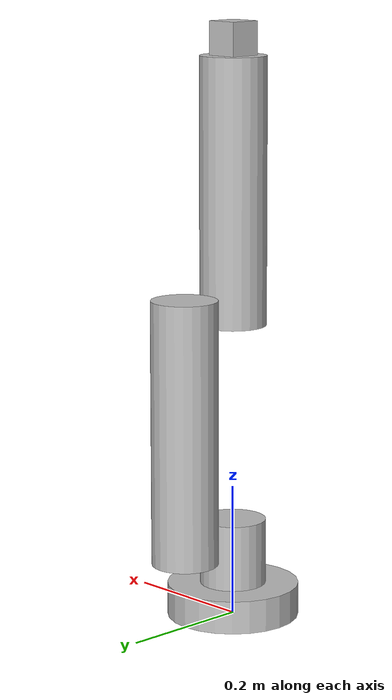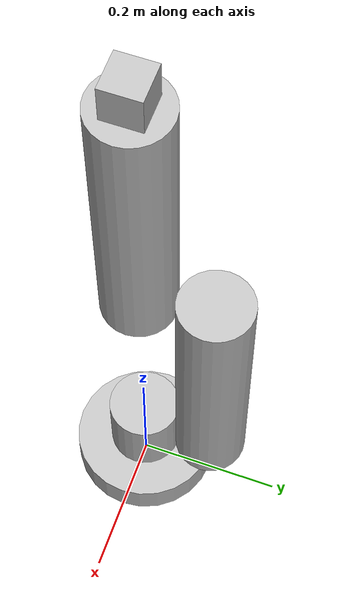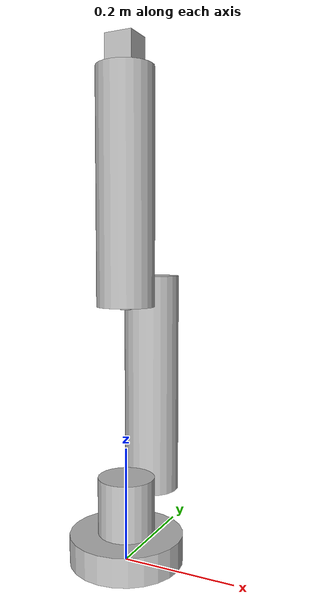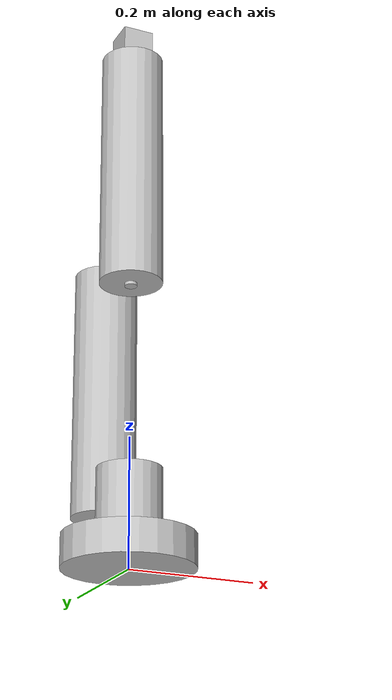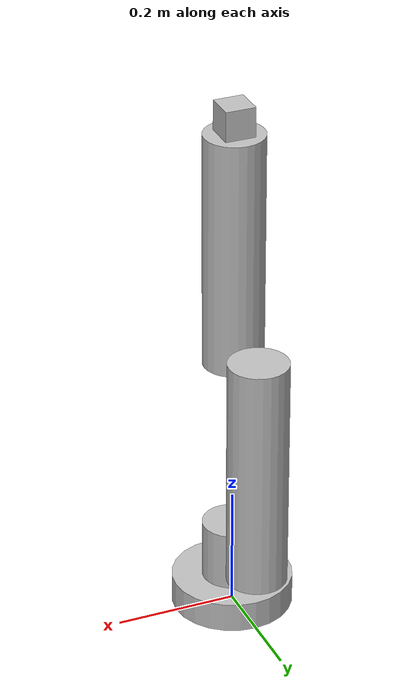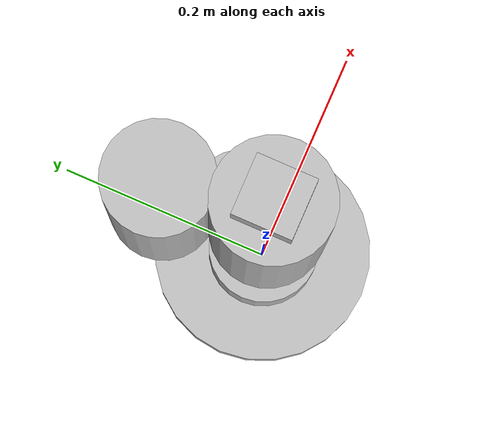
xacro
<?xml version="1.0"?>
<robot xmlns:xacro="http://www.ros.org/wiki/xacro" name="rob_manip">
    <xacro:arg name="initial_positions_file" default="initial_positions.yaml" />

    <!-- Import rob_manip urdf file -->
    <xacro:include filename="/home/lana/ros2_workspace_Kocis/src/rob_manip_description/urdf/rob_manip.urdf" />

    <!-- Import control_xacro -->
    <xacro:include filename="rob_manip.ros2_control.xacro" />

    <xacro:rob_manip_ros2_control name="GazeboSimSystem" initial_positions_file="$(arg initial_positions_file)"/>

</robot>

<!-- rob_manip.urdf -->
<robot name="rob_manip">

<!-- ==================== BASE LINK ==================== -->
<link name="base_link">
    <visual>
        <geometry>
            <cylinder length="0.05" radius="0.1"/>
        </geometry>
        <material name="silver">
            <color rgba="0.75 0.75 0.75 1"/>
        </material>
        <origin rpy="0.0 0 0" xyz="0 0 0.025"/>
    </visual>
    <collision>
        <geometry>
            <cylinder length="0.05" radius="0.1"/>
        </geometry>
        <origin rpy="0.0 0 0" xyz="0 0 0.025"/>
    </collision>
    <inertial>
        <mass value="1.0"/>
        <inertia ixx="0.0027" iyy="0.0027" izz="0.005" ixy="0" ixz="0" iyz="0"/>
        <origin rpy="0.0 0 0" xyz="0 0 0.025"/>
    </inertial>
</link>

<!-- Fiksna veza s okolinom -->
<link name="world"/>
<joint name="fixed" type="fixed">
    <parent link="world"/>
    <child link="base_link"/>
</joint>

<!-- ==================== TORSO ==================== -->
<link name="torso">
    <visual>
        <geometry>
            <cylinder length="0.1" radius="0.05"/>
        </geometry>
        <material name="silver">
            <color rgba="0.75 0.75 0.75 1"/>
        </material>
        <origin rpy="0.0 0 0" xyz="0 0 0.05"/>
    </visual>
    <collision>
        <geometry>
            <cylinder length="0.1" radius="0.05"/>
        </geometry>
        <origin rpy="0.0 0 0" xyz="0 0 0.05"/>
    </collision>
    <inertial>
        <mass value="1.0"/>
        <inertia ixx="0.00145" iyy="0.00145" izz="0.00125" ixy="0" ixz="0" iyz="0"/>
        <origin rpy="0.0 0 0" xyz="0 0 0.05"/>
    </inertial>
</link>

<!-- Hip joint: rotacija oko Z osi (yaw) -->
<joint name="hip" type="revolute">
    <axis xyz="0 0 1"/>
    <parent link="base_link"/>
    <child link="torso"/>
    <origin rpy="0 0 0" xyz="0.0 0.0 0.05"/>
    <limit lower="-3.14" upper="3.14" effort="100.0" velocity="3.14"/>
</joint>

<!-- ==================== UPPER ARM ==================== -->
<link name="upper_arm">
    <visual>
        <geometry>
            <cylinder length="0.4" radius="0.05"/>
        </geometry>
        <material name="silver">
            <color rgba="0.75 0.75 0.75 1"/>
        </material>
        <origin rpy="0.0 0 0" xyz="0 0 0.2"/>
    </visual>
    <collision>
        <geometry>
            <cylinder length="0.4" radius="0.05"/>
        </geometry>
        <origin rpy="0.0 0 0" xyz="0 0 0.2"/>
    </collision>
    <inertial>
        <mass value="1.0"/>
        <inertia ixx="0.01396" iyy="0.01396" izz="0.00125" ixy="0" ixz="0" iyz="0"/>
        <origin rpy="0.0 0 0" xyz="0 0 0.2"/>
    </inertial>
</link>

<!-- Shoulder joint: rotacija oko Y osi (pitch) -->
<joint name="shoulder" type="revolute">
    <axis xyz="0 1 0"/>
    <parent link="torso"/>
    <child link="upper_arm"/>
    <origin rpy="0 0 0" xyz="0 0.1 0.05"/>
    <limit lower="-3.14" upper="3.14" effort="100.0" velocity="3.14"/>
</joint>

<!-- ==================== FOREARM ROLL LINK (međulink za lakat) ==================== -->
<link name="forearm_roll_link">
    <visual>
        <origin xyz="0 0 0" rpy="0 0 0"/>
        <geometry>
            <cylinder length="0.01" radius="0.01"/>
        </geometry>
        <material name="silver">
            <color rgba="0.75 0.75 0.75 1"/>
        </material>
    </visual>
    <collision>
        <origin xyz="0 0 0" rpy="0 0 0"/>
        <geometry>
            <cylinder length="0.01" radius="0.01"/>
        </geometry>
    </collision>
    <inertial>
        <mass value="0.05"/>
        <inertia ixx="0.0001" iyy="0.0001" izz="0.0001" ixy="0" ixz="0" iyz="0"/>
    </inertial>
</link>

<!-- Elbow joint: rotacija oko Y osi (pitch) -->
<joint name="elbow" type="revolute">
    <axis xyz="0 1 0"/>
    <parent link="upper_arm"/>
    <child link="forearm_roll_link"/>
    <origin rpy="0 0 0" xyz="0.0 -0.1 0.35"/>
    <limit lower="-3.14" upper="3.14" effort="100.0" velocity="3.14"/>
</joint>

<!-- ==================== LOWER ARM ==================== -->
<link name="lower_arm">
    <visual>
        <geometry>
            <cylinder length="0.4" radius="0.05"/>
        </geometry>
        <material name="silver">
            <color rgba="0.75 0.75 0.75 1"/>
        </material>
        <origin rpy="0.0 0 0" xyz="0 0 0.2"/>
    </visual>
    <collision>
        <geometry>
            <cylinder length="0.4" radius="0.05"/>
        </geometry>
        <origin rpy="0.0 0 0" xyz="0 0 0.2"/>
    </collision>
    <inertial>
        <mass value="1.0"/>
        <inertia ixx="0.01396" iyy="0.01396" izz="0.00125" ixy="0" ixz="0" iyz="0"/>
        <origin rpy="0.0 0 0" xyz="0 0 0.2"/>
    </inertial>
</link>

<!-- Forearm roll joint: rotacija oko Z osi (roll podlaktice) -->
<joint name="forearm_roll" type="revolute">
    <axis xyz="0 0 1"/>
    <parent link="forearm_roll_link"/>
    <child link="lower_arm"/>
    <origin rpy="0 0 0" xyz="0 0 0"/>
    <limit lower="-3.14" upper="3.14" effort="100.0" velocity="3.14"/>
</joint>

<!-- ==================== WRIST ROLL LINK (međulink za zglob) ==================== -->
<link name="wrist_roll_link">
    <visual>
        <origin xyz="0 0 0" rpy="0 0 0"/>
        <geometry>
            <cylinder length="0.01" radius="0.01"/>
        </geometry>
        <material name="silver">
            <color rgba="0.75 0.75 0.75 1"/>
        </material>
    </visual>
    <collision>
        <origin xyz="0 0 0" rpy="0 0 0"/>
        <geometry>
            <cylinder length="0.01" radius="0.01"/>
        </geometry>
    </collision>
    <inertial>
        <mass value="0.05"/>
        <inertia ixx="0.0001" iyy="0.0001" izz="0.0001" ixy="0" ixz="0" iyz="0"/>
    </inertial>
</link>

<!-- Wrist joint: rotacija oko Y osi (pitch zapešća) -->
<joint name="wrist" type="revolute">
    <axis xyz="0 1 0"/>
    <parent link="lower_arm"/>
    <child link="wrist_roll_link"/>
    <origin rpy="0 0 0" xyz="0.0 0.0 0.4"/>
    <limit lower="-3.14" upper="3.14" effort="100.0" velocity="3.14"/>
</joint>

<!-- ==================== HAND ==================== -->
<link name="hand">
    <visual>
        <geometry>
            <box size="0.05 0.05 0.05"/>
        </geometry>
        <material name="silver">
            <color rgba="0.75 0.75 0.75 1"/>
        </material>
        <origin rpy="0.0 0 0" xyz="0 0 0.025"/>
    </visual>
    <collision>
        <geometry>
            <box size="0.05 0.05 0.05"/>
        </geometry>
        <origin rpy="0.0 0 0" xyz="0 0 0.025"/>
    </collision>
    <inertial>
        <mass value="0.5"/>
        <inertia ixx="0.00042" iyy="0.00042" izz="0.00042" ixy="0" ixz="0" iyz="0"/>
        <origin rpy="0.0 0 0" xyz="0 0 0.025"/>
    </inertial>
</link>

<!-- Hand roll joint: rotacija oko Z osi (roll šake) -->
<joint name="hand_roll" type="revolute">
    <axis xyz="0 0 1"/>
    <parent link="wrist_roll_link"/>
    <child link="hand"/>
    <origin rpy="0 0 0" xyz="0 0 0"/>
    <limit lower="-3.14" upper="3.14" effort="100.0" velocity="3.14"/>
</joint>

<!-- ==================== GAZEBO MATERIJALI ==================== -->
<gazebo reference="base_link">
    <material>Gazebo/Chrome</material>
</gazebo>
<gazebo reference="torso">
    <material>Gazebo/Chrome</material>
</gazebo>
<gazebo reference="upper_arm">
    <material>Gazebo/Chrome</material>
</gazebo>
<gazebo reference="forearm_roll_link">
    <material>Gazebo/Chrome</material>
</gazebo>
<gazebo reference="lower_arm">
    <material>Gazebo/Chrome</material>
</gazebo>
<gazebo reference="wrist_roll_link">
    <material>Gazebo/Chrome</material>
</gazebo>
<gazebo reference="hand">
    <material>Gazebo/Chrome</material>
</gazebo>

<!-- ==================== GAZEBO ROS2 CONTROL PLUGIN ==================== -->
<gazebo>
    <plugin filename="gz_ros2_control-system" name="gz_ros2_control::GazeboSimROS2ControlPlugin">
        <parameters>/home/lana/ros2_workspace_Kocis/install/rob_manip_moveit/share/rob_manip_moveit/config/ros2_controllers.yaml</parameters>
    </plugin>
</gazebo>

</robot>
